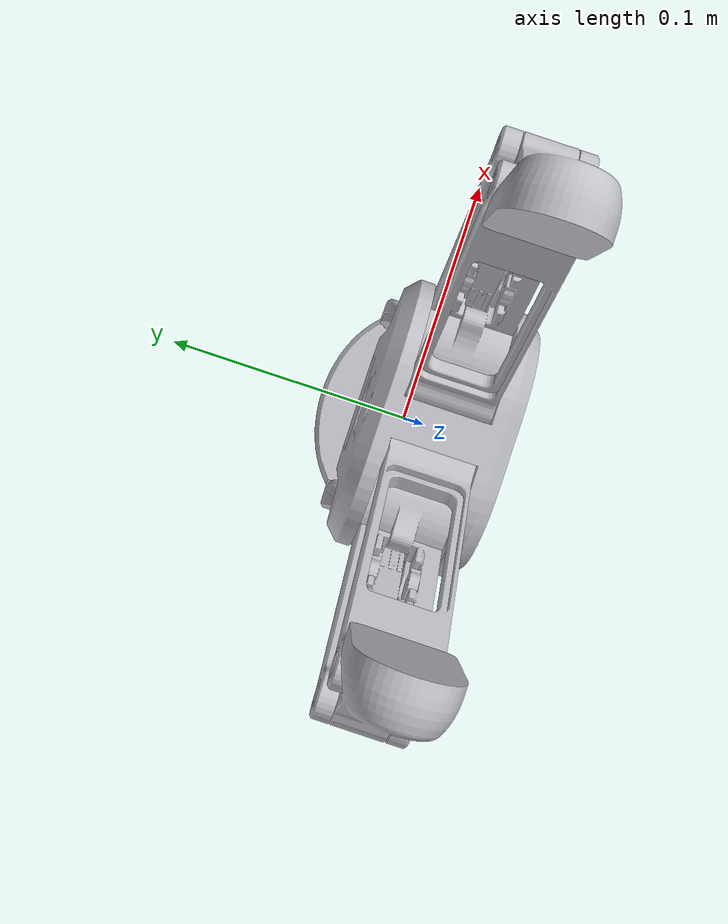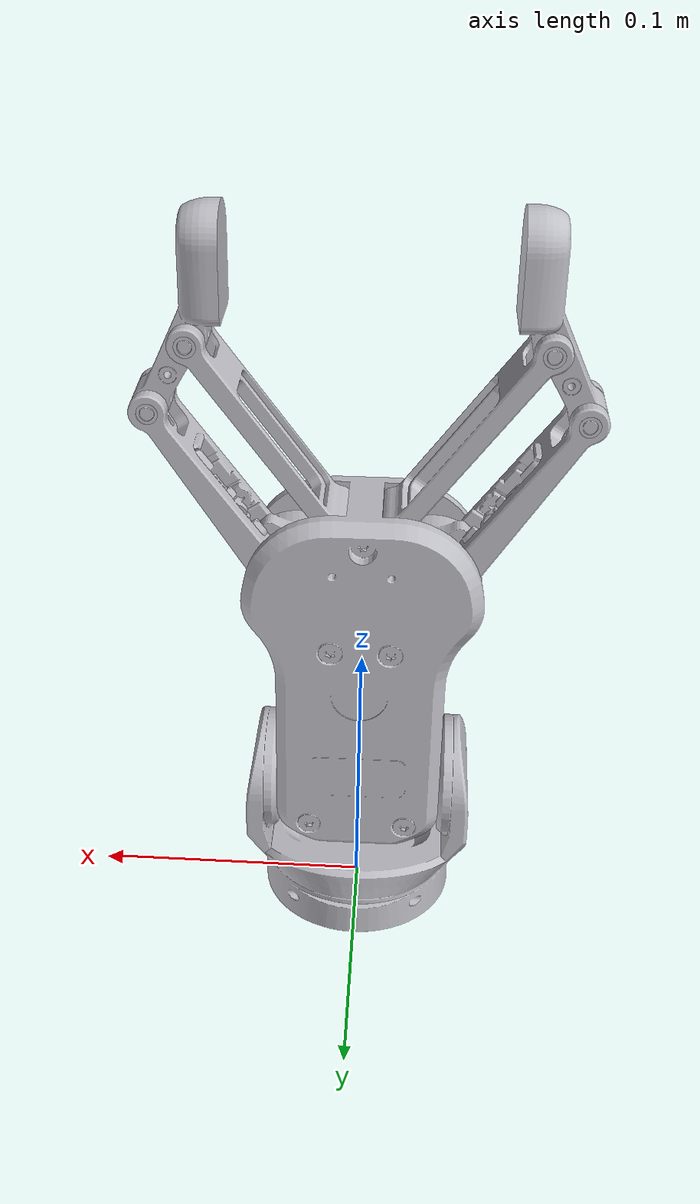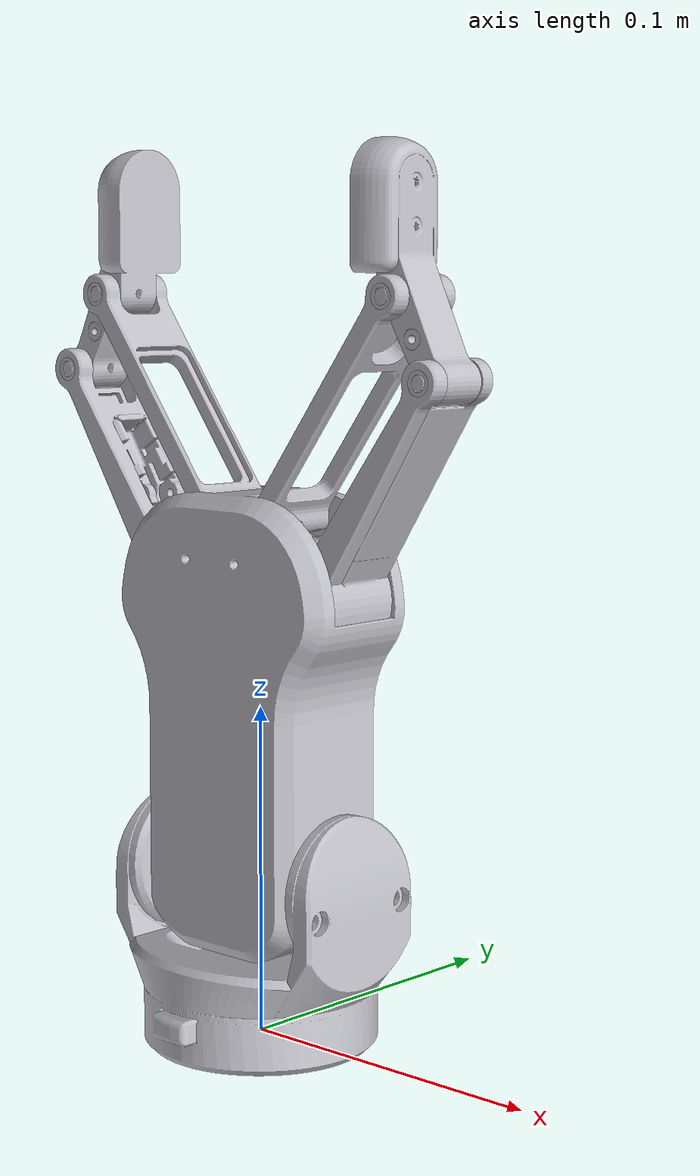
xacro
<?xml version="1.0" ?>
<robot name="rg6" xmlns:xacro="http://www.ros.org/wiki/xacro">

<xacro:include filename="$(find rg6_gripper)/urdf/materials.xacro" />
<xacro:include filename="$(find rg6_gripper)/urdf/rg6_gripper.trans" />
<xacro:include filename="$(find rg6_gripper)/urdf/rg6_gripper.gazebo" />
<link name="base_link">
  <inertial>
    <origin xyz="-0.00030179080386336256 -0.00047670368310389217 0.020678912231015475" rpy="0 0 0"/>
    <mass value="0.7592453895368185"/>
    <inertia ixx="0.000452" iyy="0.000705" izz="0.000689" ixy="-1e-06" iyz="-5e-06" ixz="-0.0"/>
  </inertial>
  <visual>
    <origin xyz="0 0 0" rpy="0 0 0"/>
    <geometry>
      <mesh filename="package://rg6_gripper/meshes/base_link.stl" scale="0.001 0.001 0.001"/>
    </geometry>
    <material name="silver"/>
  </visual>
  <collision>
    <origin xyz="0 0 0" rpy="0 0 0"/>
    <geometry>
      <mesh filename="package://rg6_gripper/meshes/base_link.stl" scale="0.001 0.001 0.001"/>
    </geometry>
  </collision>
</link>

<link name="g_main">
  <inertial>
    <origin xyz="0.031843851343412694 -6.562152034605188e-05 0.0402561266087614" rpy="0 0 0"/>
    <mass value="2.1746665575894286"/>
    <inertia ixx="0.003297" iyy="0.00361" izz="0.00105" ixy="-1e-06" iyz="5e-06" ixz="3e-06"/>
  </inertial>
  <visual>
    <origin xyz="0.031849 -1e-06 -0.04953" rpy="0 0 0"/>
    <geometry>
      <mesh filename="package://rg6_gripper/meshes/g_main.stl" scale="0.001 0.001 0.001"/>
    </geometry>
    <material name="silver"/>
  </visual>
  <collision>
    <origin xyz="0.031849 -1e-06 -0.04953" rpy="0 0 0"/>
    <geometry>
      <mesh filename="package://rg6_gripper/meshes/g_main.stl" scale="0.001 0.001 0.001"/>
    </geometry>
  </collision>
</link>

<link name="l_out">
  <inertial>
    <origin xyz="0.010442859349590227 -0.012799625869821 0.012792983853972317" rpy="0 0 0"/>
    <mass value="0.24195762212403002"/>
    <inertia ixx="0.00011" iyy="0.00016" izz="7.6e-05" ixy="0.0" iyz="0.0" ixz="-6.6e-05"/>
  </inertial>
  <visual>
    <origin xyz="-0.023851 -0.012801 -0.13453" rpy="0 0 0"/>
    <geometry>
      <mesh filename="package://rg6_gripper/meshes/l_out.stl" scale="0.001 0.001 0.001"/>
    </geometry>
    <material name="silver"/>
  </visual>
  <collision>
    <origin xyz="-0.023851 -0.012801 -0.13453" rpy="0 0 0"/>
    <geometry>
      <mesh filename="package://rg6_gripper/meshes/l_out.stl" scale="0.001 0.001 0.001"/>
    </geometry>
  </collision>
</link>

<link name="r_out">
  <inertial>
    <origin xyz="-0.010522665986501832 -0.012799489922871823 0.012809246687502496" rpy="0 0 0"/>
    <mass value="0.24195762035711757"/>
    <inertia ixx="0.00011" iyy="0.00016" izz="7.6e-05" ixy="0.0" iyz="-0.0" ixz="6.5e-05"/>
  </inertial>
  <visual>
    <origin xyz="0.023749 -0.012801 -0.13453" rpy="0 0 0"/>
    <geometry>
      <mesh filename="package://rg6_gripper/meshes/r_out.stl" scale="0.001 0.001 0.001"/>
    </geometry>
    <material name="silver"/>
  </visual>
  <collision>
    <origin xyz="0.023749 -0.012801 -0.13453" rpy="0 0 0"/>
    <geometry>
      <mesh filename="package://rg6_gripper/meshes/r_out.stl" scale="0.001 0.001 0.001"/>
    </geometry>
  </collision>
</link>

<link name="l_tip">
  <inertial>
    <origin xyz="-0.01379426979129901 0.012430443916766657 0.03303967984911002" rpy="0 0 0"/>
    <mass value="0.13426652162693567"/>
    <inertia ixx="5.6e-05" iyy="5.9e-05" izz="1.3e-05" ixy="-0.0" iyz="-0.0" ixz="1.6e-05"/>
  </inertial>
  <visual>
    <origin xyz="-0.071235 0.012499 -0.19895" rpy="0 0 0"/>
    <geometry>
      <mesh filename="package://rg6_gripper/meshes/l_tip.stl" scale="0.001 0.001 0.001"/>
    </geometry>
    <material name="silver"/>
  </visual>
  <collision>
    <origin xyz="-0.071235 0.012499 -0.19895" rpy="0 0 0"/>
    <geometry>
      <mesh filename="package://rg6_gripper/meshes/l_tip.stl" scale="0.001 0.001 0.001"/>
    </geometry>
  </collision>
</link>

<link name="r_tip">
  <inertial>
    <origin xyz="0.01379460286375201 0.012599371946431372 0.03303919214417522" rpy="0 0 0"/>
    <mass value="0.13426652162693592"/>
    <inertia ixx="5.6e-05" iyy="5.9e-05" izz="1.3e-05" ixy="-0.0" iyz="-0.0" ixz="-1.6e-05"/>
  </inertial>
  <visual>
    <origin xyz="0.071133 0.012499 -0.199024" rpy="0 0 0"/>
    <geometry>
      <mesh filename="package://rg6_gripper/meshes/r_tip.stl" scale="0.001 0.001 0.001"/>
    </geometry>
    <material name="silver"/>
  </visual>
  <collision>
    <origin xyz="0.071133 0.012499 -0.199024" rpy="0 0 0"/>
    <geometry>
      <mesh filename="package://rg6_gripper/meshes/r_tip.stl" scale="0.001 0.001 0.001"/>
    </geometry>
  </collision>
</link>

<link name="l_inner">
  <inertial>
    <origin xyz="0.021220873634115123 -0.00019955790008889003 0.02884270588361451" rpy="0 0 0"/>
    <mass value="0.0502402669834145"/>
    <inertia ixx="3.4e-05" iyy="4.6e-05" izz="2e-05" ixy="-0.0" iyz="-0.0" ixz="-2.2e-05"/>
  </inertial>
  <visual>
    <origin xyz="-0.010551 -0.000101 -0.15763" rpy="0 0 0"/>
    <geometry>
      <mesh filename="package://rg6_gripper/meshes/l_inner.stl" scale="0.001 0.001 0.001"/>
    </geometry>
    <material name="silver"/>
  </visual>
  <collision>
    <origin xyz="-0.010551 -0.000101 -0.15763" rpy="0 0 0"/>
    <geometry>
      <mesh filename="package://rg6_gripper/meshes/l_inner.stl" scale="0.001 0.001 0.001"/>
    </geometry>
  </collision>
</link>

<link name="r_inner">
  <inertial>
    <origin xyz="-0.021275767636285234 -0.00019955790008339296 0.02887567083082221" rpy="0 0 0"/>
    <mass value="0.05024026698344974"/>
    <inertia ixx="3.4e-05" iyy="4.6e-05" izz="2e-05" ixy="-0.0" iyz="0.0" ixz="2.2e-05"/>
  </inertial>
  <visual>
    <origin xyz="0.010449 -0.000101 -0.15763" rpy="0 0 0"/>
    <geometry>
      <mesh filename="package://rg6_gripper/meshes/r_inner.stl" scale="0.001 0.001 0.001"/>
    </geometry>
    <material name="silver"/>
  </visual>
  <collision>
    <origin xyz="0.010449 -0.000101 -0.15763" rpy="0 0 0"/>
    <geometry>
      <mesh filename="package://rg6_gripper/meshes/r_inner.stl" scale="0.001 0.001 0.001"/>
    </geometry>
  </collision>
</link>

<joint name="g_main" type="fixed">
  <origin xyz="-0.031849 1e-06 0.04953" rpy="0 0 0"/>
  <parent link="base_link"/>
  <child link="g_main"/>

</joint>

<joint name="l_out" type="revolute">
  <origin xyz="0.0557 0.0128 0.085" rpy="0 0 0"/>
  <parent link="g_main"/>
  <child link="l_out"/>
  <axis xyz="-0.0 1.0 0.0"/>
  <limit upper="0.610865" lower="-0.75" effort="100" velocity="100"/>
</joint>

<joint name="r_out" type="revolute">
  <origin xyz="0.0081 0.0128 0.085" rpy="0 0 0"/>
  <parent link="g_main"/>
  <child link="r_out"/>
  <axis xyz="-0.0 1.0 0.0"/>
  <limit upper="0.523599" lower="-0.610865" effort="100" velocity="100"/>
  <mimic joint="l_out" multiplier="-1"/>
</joint>

<joint name="l_tip" type="revolute">
  <origin xyz="0.047384 -0.0253 0.06442" rpy="0 0 0"/>
  <parent link="l_out"/>
  <child link="l_tip"/>
  <axis xyz="0.0 -1.0 0.0"/>
  <limit upper="0.610865" lower="-0.523599" effort="100" velocity="100"/>
  <mimic joint="l_out" multiplier="1"/>
</joint>

<joint name="r_tip" type="revolute">
  <origin xyz="-0.047384 -0.0253 0.064494" rpy="0 0 0"/>
  <parent link="r_out"/>
  <child link="r_tip"/>
  <axis xyz="0.0 -1.0 0.0"/>
  <limit upper="0.523599" lower="-0.610865" effort="100" velocity="100"/>
  <mimic joint="l_out" multiplier="-1"/>
</joint>

<joint name="l_passive" type="revolute">
  <origin xyz="0.0424 0.0001 0.1081" rpy="0 0 0"/>
  <parent link="g_main"/>
  <child link="l_inner"/>
  <axis xyz="0.0 -1.0 0.0"/>
  <limit upper="0.523599" lower="-0.610865" effort="100" velocity="100"/>
  <mimic joint="l_out" multiplier="-1"/>
</joint>

<joint name="r_passive" type="revolute">
  <origin xyz="0.0214 0.0001 0.1081" rpy="0 0 0"/>
  <parent link="g_main"/>
  <child link="r_inner"/>
  <axis xyz="-0.0 1.0 -0.0"/>
  <limit upper="0.523599" lower="-0.610865" effort="100" velocity="100"/>
  <mimic joint="l_out" multiplier="-1"/>
</joint>

<link name="hand_tcp" />
<joint name="hand_tcp_joint" type="fixed">
  <origin xyz="0.036 0 0.21" rpy="0 0 0" />
  <parent link="g_main" />
  <child link="hand_tcp" />
  <axis xyz="-0.0 1.0 -0.0"/>
</joint>

</robot>
